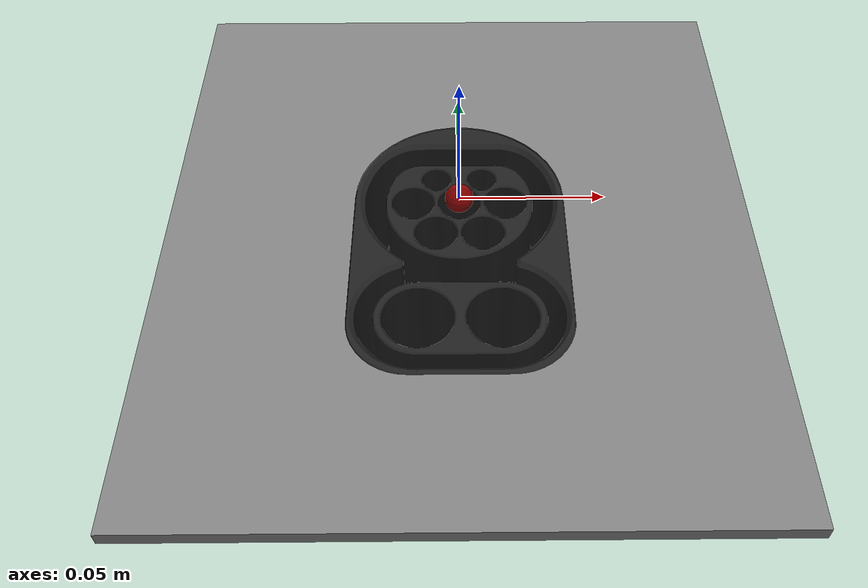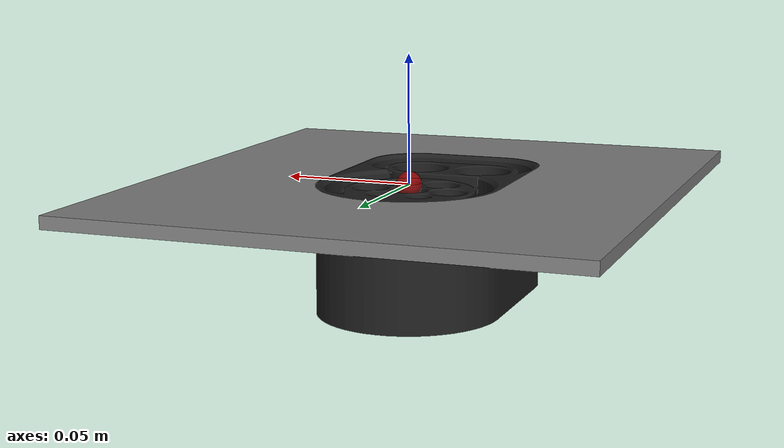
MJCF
<mujoco model="socket">
  <default>
    <default class="visual">
      <geom group="1" type="mesh" contype="0" conaffinity="0"/>
    </default>
    <default class="collision">
      <geom group="0" type="mesh"/>
    </default>
  </default>
  <asset>
    <texture file="../textures/black-plastic.png" type="2d" name="black-plastic"/>
    <material name="black_plastic" reflectance="0.0" shininess="1" specular="0.1" texrepeat="3 3" texture="black-plastic" texuniform="true" />
    <mesh file="meshes/socket_vis.stl" name="socket_vis"/>
    <mesh file="meshes/socket_board_vis.stl" name="socket_board_vis"/>
  </asset>
  <worldbody>
    <body>
      <body name="object">
        <geom pos="0 0 0" mesh="socket_vis" type="mesh"
        class = "visual" material = "black_plastic"/>
        <geom pos="0 0 0" mesh="socket_board_vis" type="mesh"
        class = "visual"/>
      </body>
      <site rgba="1. 0 0 0.5" size="0.005" pos="0 0 0.0" name="front_site"/>
      <!-- plug tip length -->
      <site rgba="1. 0 0 0.5" size="0.005" pos="0 0 -0.0346" name="end_site"/>

      <site rgba="0 0 0 0" size="0.005" pos="0 0 -0.034" name="bottom_site"/>
      <site rgba="0 0 0 0" size="0.005" pos="0 0 0.0" name="top_site"/>
      <site rgba="0 0 0 0" size="0.005" pos="0.03 0.03 0" name="horizontal_radius_site" />
    </body>
  </worldbody>
</mujoco>
